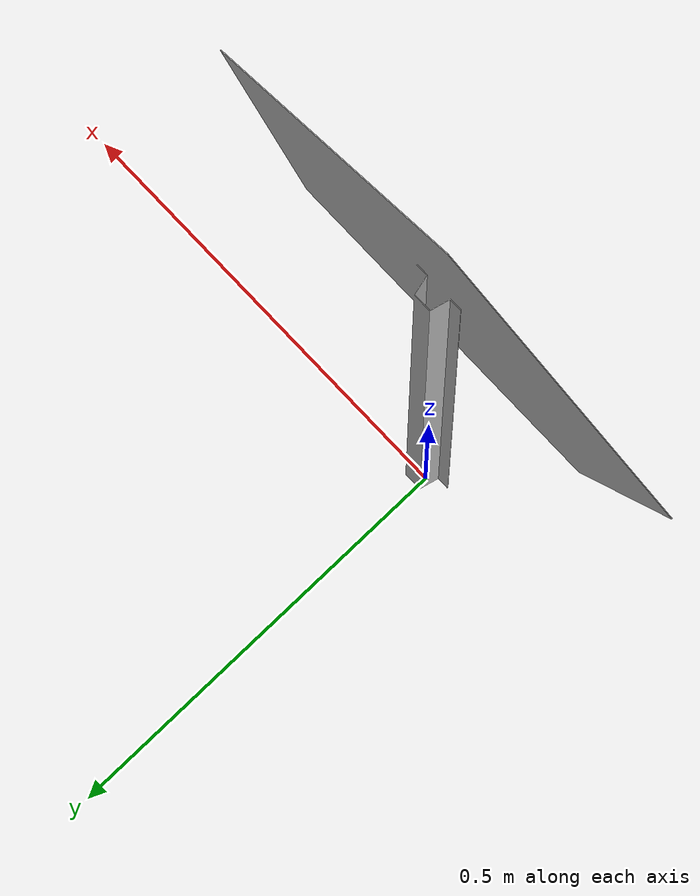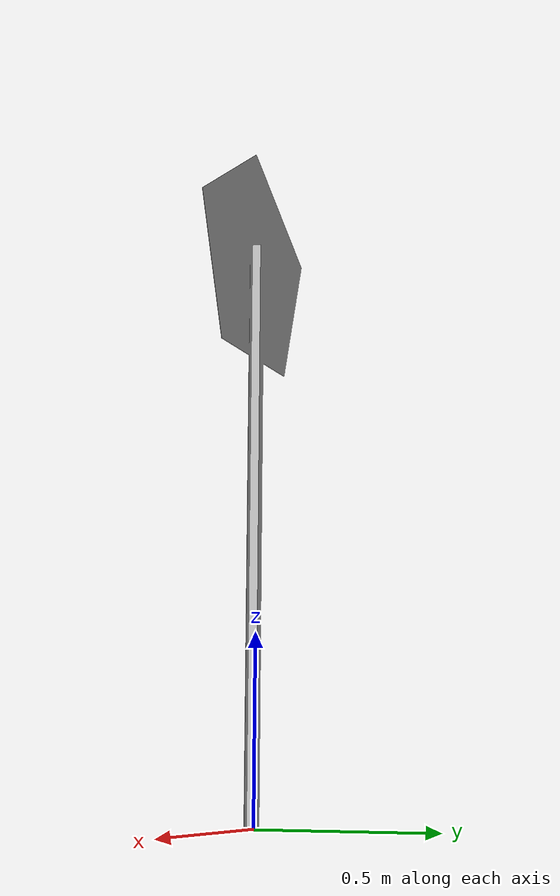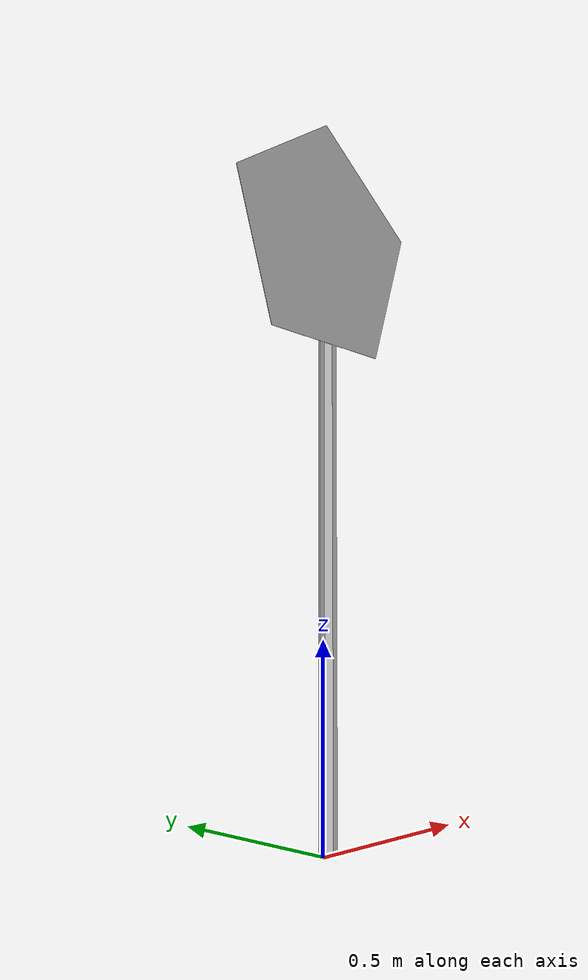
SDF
<?xml version="1.0" ?>
<sdf version="1.5">
  <model name="tree_sign">
    <static>true</static>
    <link name="link">
      <collision name="collision">
        <geometry>
          <mesh>
            <uri>model://tree_sign/meshes/tree_sign.dae</uri>
          </mesh>
        </geometry>
      </collision>
      <visual name="visual">
        <geometry>
          <mesh>
            <uri>model://tree_sign/meshes/tree_sign.dae</uri>
          </mesh>
        </geometry>
        <material>
          <script>
            <uri>model://tree_sign/materials/scripts</uri>
            <uri>model://tree_sign/materials/textures</uri>
            <name>TreeSign/Diffuse</name>
          </script>
        </material>
      </visual>
    </link>
  </model>
</sdf>
